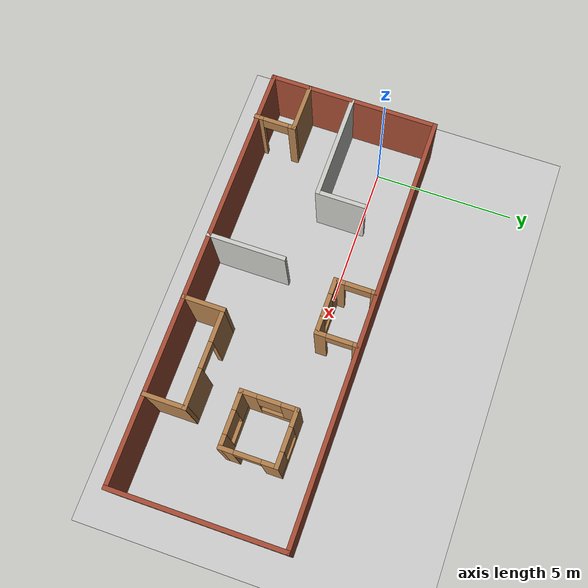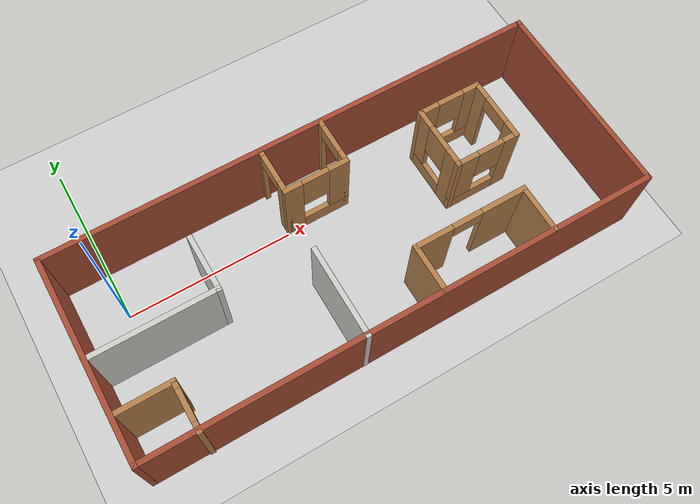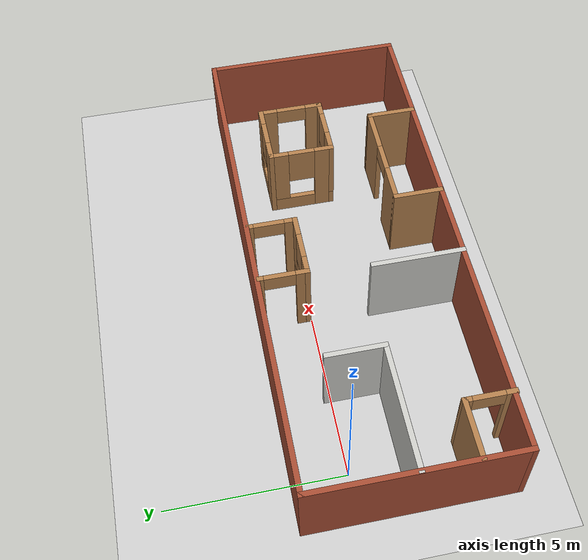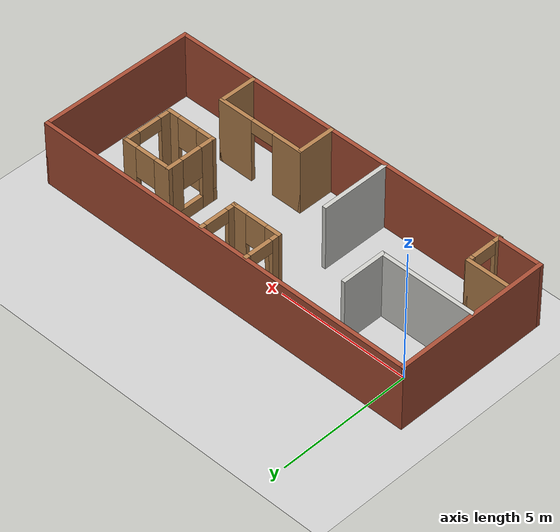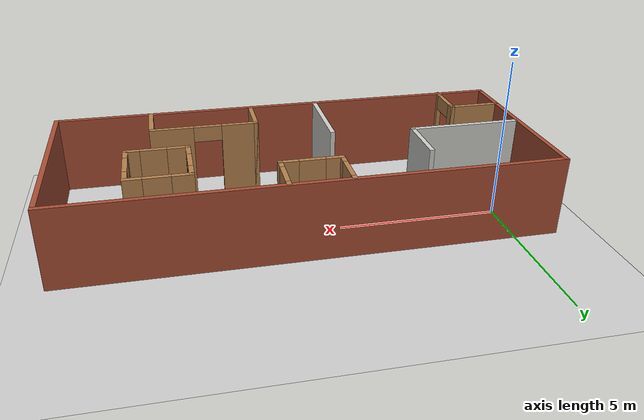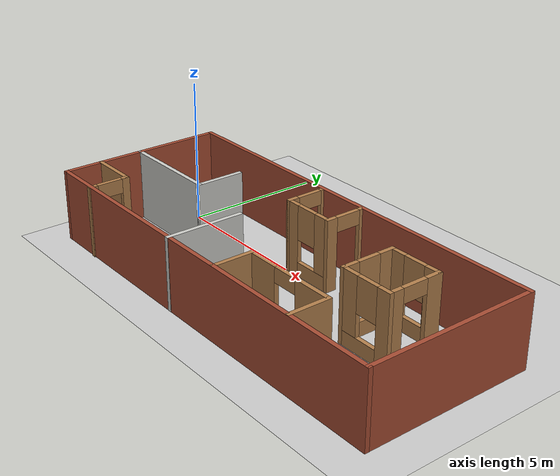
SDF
<sdf version="1.7">
 <world name="default">
  <light name="sun" type="directional">
   <pose>0 0 10 0 -0 0</pose>
   <diffuse>0.8 0.8 0.8 1</diffuse>
   <specular>0.2 0.2 0.2 1</specular>
   <attenuation>
    <range>1000</range>
    <constant>0.9</constant>
    <linear>0.01</linear>
    <quadratic>0.001</quadratic>
   </attenuation>
   <direction>-0.5 0.1 -0.9</direction>
   <spot><inner_angle>0</inner_angle><outer_angle>0</outer_angle><falloff>0</falloff></spot>
  </light>
  <model name="ground_plane">
   <static>1</static>
   <link name="link">
    <collision name="collision">
     <geometry><plane><normal>0 0 1</normal><size>100 100</size></plane></geometry>
     <surface>
      <contact><collide_bitmask>65535</collide_bitmask></contact>
      <friction><ode><mu>100</mu><mu2>50</mu2></ode></friction>
     </surface>
    </collision>
    <visual name="visual">
     <cast_shadows>0</cast_shadows>
     <geometry><plane><normal>0 0 1</normal><size>100 100</size></plane></geometry>
     <material>
      <script><uri>file://media/materials/scripts/gazebo.material</uri><name>Gazebo/Grey</name></script>
     </material>
    </visual>
   </link>
  </model>
  <gravity>0 0 -9.8</gravity>
  <magnetic_field>6e-06 2.3e-05 -4.2e-05</magnetic_field>
  <atmosphere type="adiabatic"/>
  <physics type="ode">
   <max_step_size>0.001</max_step_size>
   <real_time_factor>1</real_time_factor>
   <real_time_update_rate>1000</real_time_update_rate>
  </physics>
  <scene><ambient>0.4 0.4 0.4 1</ambient><background>0.7 0.7 0.7 1</background><shadows>1</shadows></scene>
  <audio><device>default</device></audio>
  <spherical_coordinates>
   <surface_model>EARTH_WGS84</surface_model>
   <latitude_deg>0</latitude_deg>
   <longitude_deg>0</longitude_deg>
   <elevation>0</elevation>
   <heading_deg>0</heading_deg>
  </spherical_coordinates>
  <model name="Untitled">
   <pose>6.12861 -1.12142 0 0 -0 0</pose>
   <link name="Wall_10">
    <collision name="Wall_10_Collision">
     <geometry><box><size>6 0.15 2.5</size></box></geometry>
     <pose>0 0 1.25 0 -0 0</pose>
    </collision>
    <visual name="Wall_10_Visual">
     <pose>0 0 1.25 0 -0 0</pose>
     <geometry><box><size>6 0.15 2.5</size></box></geometry>
     <material>
      <script><uri>file://media/materials/scripts/gazebo.material</uri><name>Gazebo/Bricks</name></script>
      <ambient>1 1 1 1</ambient>
     </material>
     <meta><layer>0</layer></meta>
    </visual>
    <pose>-7.425 -0.296062 0 0 -0 1.5708</pose>
   </link>
   <link name="Wall_12">
    <collision name="Wall_12_Collision">
     <geometry><box><size>3.75 0.15 2.5</size></box></geometry>
     <pose>0 0 1.25 0 -0 0</pose>
    </collision>
    <visual name="Wall_12_Visual">
     <pose>0 0 1.25 0 -0 0</pose>
     <geometry><box><size>3.75 0.15 2.5</size></box></geometry>
     <material>
      <script><uri>file://media/materials/scripts/gazebo.material</uri><name>Gazebo/CeilingTiled</name></script>
      <ambient>1 1 1 1</ambient>
     </material>
     <meta><layer>0</layer></meta>
    </visual>
    <pose>-5.61177 -0.346688 0 0 -0 0</pose>
   </link>
   <link name="Wall_13">
    <collision name="Wall_13_Collision">
     <geometry><box><size>1.75 0.15 2.5</size></box></geometry>
     <pose>0 0 1.25 0 -0 0</pose>
    </collision>
    <visual name="Wall_13_Visual">
     <pose>0 0 1.25 0 -0 0</pose>
     <geometry><box><size>1.75 0.15 2.5</size></box></geometry>
     <material>
      <script><uri>file://media/materials/scripts/gazebo.material</uri><name>Gazebo/CeilingTiled</name></script>
      <ambient>1 1 1 1</ambient>
     </material>
     <meta><layer>0</layer></meta>
    </visual>
    <pose>-3.81177 0.453312 0 0 -0 1.5708</pose>
   </link>
   <link name="Wall_16">
    <pose>4.25192 1.46514 0 0 -0 0</pose>
    <visual name="Wall_16_Visual_0">
     <pose>-0.679787 0 1.25 0 -0 0</pose>
     <geometry><box><size>0.640425 0.15 2.5</size></box></geometry>
     <material>
      <script><uri>file://media/materials/scripts/gazebo.material</uri><name>Gazebo/Wood</name></script>
      <ambient>1 1 1 1</ambient>
     </material>
     <meta><layer>0</layer></meta>
    </visual>
    <collision name="Wall_16_Collision_0">
     <geometry><box><size>0.640425 0.15 2.5</size></box></geometry>
     <pose>-0.679787 0 1.25 0 -0 0</pose>
    </collision>
    <visual name="Wall_16_Visual_1">
     <pose>0.320213 0 0.25 0 -0 0</pose>
     <geometry><box><size>1.35957 0.15 0.5</size></box></geometry>
     <material>
      <script><uri>file://media/materials/scripts/gazebo.material</uri><name>Gazebo/Wood</name></script>
      <ambient>1 1 1 1</ambient>
     </material>
     <meta><layer>0</layer></meta>
    </visual>
    <collision name="Wall_16_Collision_1">
     <geometry><box><size>1.35957 0.15 0.5</size></box></geometry>
     <pose>0.320213 0 0.25 0 -0 0</pose>
    </collision>
    <visual name="Wall_16_Visual_2">
     <pose>0.720213 0 1.5 0 -0 0</pose>
     <geometry><box><size>0.559575 0.15 2</size></box></geometry>
     <material>
      <script><uri>file://media/materials/scripts/gazebo.material</uri><name>Gazebo/Wood</name></script>
      <ambient>1 1 1 1</ambient>
     </material>
     <meta><layer>0</layer></meta>
    </visual>
    <collision name="Wall_16_Collision_2">
     <geometry><box><size>0.559575 0.15 2</size></box></geometry>
     <pose>0.720213 0 1.5 0 -0 0</pose>
    </collision>
    <visual name="Wall_16_Visual_3">
     <pose>0.040425 0 1.9 0 -0 0</pose>
     <geometry><box><size>0.8 0.15 1.2</size></box></geometry>
     <material>
      <script><uri>file://media/materials/scripts/gazebo.material</uri><name>Gazebo/Wood</name></script>
      <ambient>1 1 1 1</ambient>
     </material>
     <meta><layer>0</layer></meta>
    </visual>
    <collision name="Wall_16_Collision_3">
     <geometry><box><size>0.8 0.15 1.2</size></box></geometry>
     <pose>0.040425 0 1.9 0 -0 0</pose>
    </collision>
   </link>
   <link name="Wall_17">
    <pose>5.17692 0.540138 0 0 -0 -1.5708</pose>
    <visual name="Wall_17_Visual_0">
     <pose>-0.7114 0 1.25 0 -0 0</pose>
     <geometry><box><size>0.5772 0.15 2.5</size></box></geometry>
     <material>
      <script><uri>file://media/materials/scripts/gazebo.material</uri><name>Gazebo/Wood</name></script>
      <ambient>1 1 1 1</ambient>
     </material>
     <meta><layer>0</layer></meta>
    </visual>
    <collision name="Wall_17_Collision_0">
     <geometry><box><size>0.5772 0.15 2.5</size></box></geometry>
     <pose>-0.7114 0 1.25 0 -0 0</pose>
    </collision>
    <visual name="Wall_17_Visual_1">
     <pose>0.7386 0 1.25 0 -0 0</pose>
     <geometry><box><size>0.5228 0.15 2.5</size></box></geometry>
     <material>
      <script><uri>file://media/materials/scripts/gazebo.material</uri><name>Gazebo/Wood</name></script>
      <ambient>1 1 1 1</ambient>
     </material>
     <meta><layer>0</layer></meta>
    </visual>
    <collision name="Wall_17_Collision_1">
     <geometry><box><size>0.5228 0.15 2.5</size></box></geometry>
     <pose>0.7386 0 1.25 0 -0 0</pose>
    </collision>
    <visual name="Wall_17_Visual_2">
     <pose>0.0272 0 2.25 0 -0 0</pose>
     <geometry><box><size>0.9 0.15 0.5</size></box></geometry>
     <material>
      <script><uri>file://media/materials/scripts/gazebo.material</uri><name>Gazebo/Wood</name></script>
      <ambient>1 1 1 1</ambient>
     </material>
     <meta><layer>0</layer></meta>
    </visual>
    <collision name="Wall_17_Collision_2">
     <geometry><box><size>0.9 0.15 0.5</size></box></geometry>
     <pose>0.0272 0 2.25 0 -0 0</pose>
    </collision>
   </link>
   <link name="Wall_18">
    <pose>4.25192 -0.384862 0 0 -0 3.14159</pose>
    <visual name="Wall_18_Visual_0">
     <pose>-0.753275 0 1.25 0 -0 0</pose>
     <geometry><box><size>0.49345 0.15 2.5</size></box></geometry>
     <material>
      <script><uri>file://media/materials/scripts/gazebo.material</uri><name>Gazebo/Wood</name></script>
      <ambient>1 1 1 1</ambient>
     </material>
     <meta><layer>0</layer></meta>
    </visual>
    <collision name="Wall_18_Collision_0">
     <geometry><box><size>0.49345 0.15 2.5</size></box></geometry>
     <pose>-0.753275 0 1.25 0 -0 0</pose>
    </collision>
    <visual name="Wall_18_Visual_1">
     <pose>0.246725 0 0.25 0 -0 0</pose>
     <geometry><box><size>1.50655 0.15 0.5</size></box></geometry>
     <material>
      <script><uri>file://media/materials/scripts/gazebo.material</uri><name>Gazebo/Wood</name></script>
      <ambient>1 1 1 1</ambient>
     </material>
     <meta><layer>0</layer></meta>
    </visual>
    <collision name="Wall_18_Collision_1">
     <geometry><box><size>1.50655 0.15 0.5</size></box></geometry>
     <pose>0.246725 0 0.25 0 -0 0</pose>
    </collision>
    <visual name="Wall_18_Visual_2">
     <pose>0.646725 0 1.5 0 -0 0</pose>
     <geometry><box><size>0.70655 0.15 2</size></box></geometry>
     <material>
      <script><uri>file://media/materials/scripts/gazebo.material</uri><name>Gazebo/Wood</name></script>
      <ambient>1 1 1 1</ambient>
     </material>
     <meta><layer>0</layer></meta>
    </visual>
    <collision name="Wall_18_Collision_2">
     <geometry><box><size>0.70655 0.15 2</size></box></geometry>
     <pose>0.646725 0 1.5 0 -0 0</pose>
    </collision>
    <visual name="Wall_18_Visual_3">
     <pose>-0.10655 0 1.9 0 -0 0</pose>
     <geometry><box><size>0.8 0.15 1.2</size></box></geometry>
     <material>
      <script><uri>file://media/materials/scripts/gazebo.material</uri><name>Gazebo/Wood</name></script>
      <ambient>1 1 1 1</ambient>
     </material>
     <meta><layer>0</layer></meta>
    </visual>
    <collision name="Wall_18_Collision_3">
     <geometry><box><size>0.8 0.15 1.2</size></box></geometry>
     <pose>-0.10655 0 1.9 0 -0 0</pose>
    </collision>
   </link>
   <link name="Wall_19">
    <pose>3.32693 0.540138 0 0 -0 1.5708</pose>
    <visual name="Wall_19_Visual_0">
     <pose>-0.700375 0 1.25 0 -0 0</pose>
     <geometry><box><size>0.59925 0.15 2.5</size></box></geometry>
     <material>
      <script><uri>file://media/materials/scripts/gazebo.material</uri><name>Gazebo/Wood</name></script>
      <ambient>1 1 1 1</ambient>
     </material>
     <meta><layer>0</layer></meta>
    </visual>
    <collision name="Wall_19_Collision_0">
     <geometry><box><size>0.59925 0.15 2.5</size></box></geometry>
     <pose>-0.700375 0 1.25 0 -0 0</pose>
    </collision>
    <visual name="Wall_19_Visual_1">
     <pose>0.299625 0 0.25 0 -0 0</pose>
     <geometry><box><size>1.40075 0.15 0.5</size></box></geometry>
     <material>
      <script><uri>file://media/materials/scripts/gazebo.material</uri><name>Gazebo/Wood</name></script>
      <ambient>1 1 1 1</ambient>
     </material>
     <meta><layer>0</layer></meta>
    </visual>
    <collision name="Wall_19_Collision_1">
     <geometry><box><size>1.40075 0.15 0.5</size></box></geometry>
     <pose>0.299625 0 0.25 0 -0 0</pose>
    </collision>
    <visual name="Wall_19_Visual_2">
     <pose>0.699625 0 1.5 0 -0 0</pose>
     <geometry><box><size>0.60075 0.15 2</size></box></geometry>
     <material>
      <script><uri>file://media/materials/scripts/gazebo.material</uri><name>Gazebo/Wood</name></script>
      <ambient>1 1 1 1</ambient>
     </material>
     <meta><layer>0</layer></meta>
    </visual>
    <collision name="Wall_19_Collision_2">
     <geometry><box><size>0.60075 0.15 2</size></box></geometry>
     <pose>0.699625 0 1.5 0 -0 0</pose>
    </collision>
    <visual name="Wall_19_Visual_3">
     <pose>-0.00075 0 1.9 0 -0 0</pose>
     <geometry><box><size>0.8 0.15 1.2</size></box></geometry>
     <material>
      <script><uri>file://media/materials/scripts/gazebo.material</uri><name>Gazebo/Wood</name></script>
      <ambient>1 1 1 1</ambient>
     </material>
     <meta><layer>0</layer></meta>
    </visual>
    <collision name="Wall_19_Collision_3">
     <geometry><box><size>0.8 0.15 1.2</size></box></geometry>
     <pose>-0.00075 0 1.9 0 -0 0</pose>
    </collision>
   </link>
   <link name="Wall_21">
    <collision name="Wall_21_Collision">
     <geometry><box><size>2.75 0.15 2.5</size></box></geometry>
     <pose>0 0 1.25 0 -0 0</pose>
    </collision>
    <visual name="Wall_21_Visual">
     <pose>0 0 1.25 0 -0 0</pose>
     <geometry><box><size>2.75 0.15 2.5</size></box></geometry>
     <material>
      <script><uri>file://media/materials/scripts/gazebo.material</uri><name>Gazebo/CeilingTiled</name></script>
      <ambient>1 1 1 1</ambient>
     </material>
     <meta><layer>0</layer></meta>
    </visual>
    <pose>-1.22247 -1.92974 0 0 -0 1.5708</pose>
   </link>
   <link name="Wall_23">
    <collision name="Wall_23_Collision">
     <geometry><box><size>1.75 0.15 2.5</size></box></geometry>
     <pose>0 0 1.25 0 -0 0</pose>
    </collision>
    <visual name="Wall_23_Visual">
     <pose>0 0 1.25 0 -0 0</pose>
     <geometry><box><size>1.75 0.15 2.5</size></box></geometry>
     <material>
      <script><uri>file://media/materials/scripts/gazebo.material</uri><name>Gazebo/Wood</name></script>
      <ambient>1 1 1 1</ambient>
     </material>
     <meta><layer>0</layer></meta>
    </visual>
    <pose>-6.59855 -1.90724 0 0 -0 0</pose>
   </link>
   <link name="Wall_24">
    <pose>-5.79855 -2.58224 0 0 -0 -1.5708</pose>
    <visual name="Wall_24_Visual_0">
     <pose>-0.613488 0 1.25 0 -0 0</pose>
     <geometry><box><size>0.273025 0.15 2.5</size></box></geometry>
     <material>
      <script><uri>file://media/materials/scripts/gazebo.material</uri><name>Gazebo/Wood</name></script>
      <ambient>1 1 1 1</ambient>
     </material>
     <meta><layer>0</layer></meta>
    </visual>
    <collision name="Wall_24_Collision_0">
     <geometry><box><size>0.273025 0.15 2.5</size></box></geometry>
     <pose>-0.613488 0 1.25 0 -0 0</pose>
    </collision>
    <visual name="Wall_24_Visual_1">
     <pose>0.586512 0 1.25 0 -0 0</pose>
     <geometry><box><size>0.326975 0.15 2.5</size></box></geometry>
     <material>
      <script><uri>file://media/materials/scripts/gazebo.material</uri><name>Gazebo/Wood</name></script>
      <ambient>1 1 1 1</ambient>
     </material>
     <meta><layer>0</layer></meta>
    </visual>
    <collision name="Wall_24_Collision_1">
     <geometry><box><size>0.326975 0.15 2.5</size></box></geometry>
     <pose>0.586512 0 1.25 0 -0 0</pose>
    </collision>
    <visual name="Wall_24_Visual_2">
     <pose>-0.026975 0 2.25 0 -0 0</pose>
     <geometry><box><size>0.9 0.15 0.5</size></box></geometry>
     <material>
      <script><uri>file://media/materials/scripts/gazebo.material</uri><name>Gazebo/Wood</name></script>
      <ambient>1 1 1 1</ambient>
     </material>
     <meta><layer>0</layer></meta>
    </visual>
    <collision name="Wall_24_Collision_2">
     <geometry><box><size>0.9 0.15 0.5</size></box></geometry>
     <pose>-0.026975 0 2.25 0 -0 0</pose>
    </collision>
   </link>
   <link name="Wall_26">
    <collision name="Wall_26_Collision">
     <geometry><box><size>1.5 0.15 2.5</size></box></geometry>
     <pose>0 0 1.25 0 -0 0</pose>
    </collision>
    <visual name="Wall_26_Visual">
     <pose>0 0 1.25 0 -0 0</pose>
     <geometry><box><size>1.5 0.15 2.5</size></box></geometry>
     <material>
      <script><uri>file://media/materials/scripts/gazebo.material</uri><name>Gazebo/Wood</name></script>
      <ambient>1 1 1 1</ambient>
     </material>
     <meta><layer>0</layer></meta>
    </visual>
    <pose>1.039 -2.52829 0 0 -0 1.5708</pose>
   </link>
   <link name="Wall_27">
    <pose>2.714 -1.85329 0 0 -0 0</pose>
    <visual name="Wall_27_Visual_0">
     <pose>-1.15061 0 1.25 0 -0 0</pose>
     <geometry><box><size>1.19877 0.15 2.5</size></box></geometry>
     <material>
      <script><uri>file://media/materials/scripts/gazebo.material</uri><name>Gazebo/Wood</name></script>
      <ambient>1 1 1 1</ambient>
     </material>
     <meta><layer>0</layer></meta>
    </visual>
    <collision name="Wall_27_Collision_0">
     <geometry><box><size>1.19877 0.15 2.5</size></box></geometry>
     <pose>-1.15061 0 1.25 0 -0 0</pose>
    </collision>
    <visual name="Wall_27_Visual_1">
     <pose>1.04939 0 1.25 0 -0 0</pose>
     <geometry><box><size>1.40122 0.15 2.5</size></box></geometry>
     <material>
      <script><uri>file://media/materials/scripts/gazebo.material</uri><name>Gazebo/Wood</name></script>
      <ambient>1 1 1 1</ambient>
     </material>
     <meta><layer>0</layer></meta>
    </visual>
    <collision name="Wall_27_Collision_1">
     <geometry><box><size>1.40122 0.15 2.5</size></box></geometry>
     <pose>1.04939 0 1.25 0 -0 0</pose>
    </collision>
    <visual name="Wall_27_Visual_2">
     <pose>-0.101225 0 2.25 0 -0 0</pose>
     <geometry><box><size>0.9 0.15 0.5</size></box></geometry>
     <material>
      <script><uri>file://media/materials/scripts/gazebo.material</uri><name>Gazebo/Wood</name></script>
      <ambient>1 1 1 1</ambient>
     </material>
     <meta><layer>0</layer></meta>
    </visual>
    <collision name="Wall_27_Collision_2">
     <geometry><box><size>0.9 0.15 0.5</size></box></geometry>
     <pose>-0.101225 0 2.25 0 -0 0</pose>
    </collision>
   </link>
   <link name="Wall_28">
    <collision name="Wall_28_Collision">
     <geometry><box><size>1.5 0.15 2.5</size></box></geometry>
     <pose>0 0 1.25 0 -0 0</pose>
    </collision>
    <visual name="Wall_28_Visual">
     <pose>0 0 1.25 0 -0 0</pose>
     <geometry><box><size>1.5 0.15 2.5</size></box></geometry>
     <material>
      <script><uri>file://media/materials/scripts/gazebo.material</uri><name>Gazebo/Wood</name></script>
      <ambient>1 1 1 1</ambient>
     </material>
     <meta><layer>0</layer></meta>
    </visual>
    <pose>4.389 -2.52829 0 0 -0 -1.5708</pose>
   </link>
   <link name="Wall_30">
    <pose>-1.06377 1.88781 0 0 -0 -1.5708</pose>
    <visual name="Wall_30_Visual_0">
     <pose>-0.653163 0 1.25 0 -0 0</pose>
     <geometry><box><size>0.193675 0.15 2.5</size></box></geometry>
     <material>
      <script><uri>file://media/materials/scripts/gazebo.material</uri><name>Gazebo/Wood</name></script>
      <ambient>1 1 1 1</ambient>
     </material>
     <meta><layer>0</layer></meta>
    </visual>
    <collision name="Wall_30_Collision_0">
     <geometry><box><size>0.193675 0.15 2.5</size></box></geometry>
     <pose>-0.653163 0 1.25 0 -0 0</pose>
    </collision>
    <visual name="Wall_30_Visual_1">
     <pose>0.546837 0 1.25 0 -0 0</pose>
     <geometry><box><size>0.406325 0.15 2.5</size></box></geometry>
     <material>
      <script><uri>file://media/materials/scripts/gazebo.material</uri><name>Gazebo/Wood</name></script>
      <ambient>1 1 1 1</ambient>
     </material>
     <meta><layer>0</layer></meta>
    </visual>
    <collision name="Wall_30_Collision_1">
     <geometry><box><size>0.406325 0.15 2.5</size></box></geometry>
     <pose>0.546837 0 1.25 0 -0 0</pose>
    </collision>
    <visual name="Wall_30_Visual_2">
     <pose>-0.106325 0 2.25 0 -0 0</pose>
     <geometry><box><size>0.9 0.15 0.5</size></box></geometry>
     <material>
      <script><uri>file://media/materials/scripts/gazebo.material</uri><name>Gazebo/Wood</name></script>
      <ambient>1 1 1 1</ambient>
     </material>
     <meta><layer>0</layer></meta>
    </visual>
    <collision name="Wall_30_Collision_2">
     <geometry><box><size>0.9 0.15 0.5</size></box></geometry>
     <pose>-0.106325 0 2.25 0 -0 0</pose>
    </collision>
   </link>
   <link name="Wall_31">
    <pose>-0.138775 1.21281 0 0 -0 0</pose>
    <visual name="Wall_31_Visual_0">
     <pose>-0.71285 0 1.25 0 -0 0</pose>
     <geometry><box><size>0.5743 0.15 2.5</size></box></geometry>
     <material>
      <script><uri>file://media/materials/scripts/gazebo.material</uri><name>Gazebo/Wood</name></script>
      <ambient>1 1 1 1</ambient>
     </material>
     <meta><layer>0</layer></meta>
    </visual>
    <collision name="Wall_31_Collision_0">
     <geometry><box><size>0.5743 0.15 2.5</size></box></geometry>
     <pose>-0.71285 0 1.25 0 -0 0</pose>
    </collision>
    <visual name="Wall_31_Visual_1">
     <pose>0.28715 0 0.25 0 -0 0</pose>
     <geometry><box><size>1.4257 0.15 0.5</size></box></geometry>
     <material>
      <script><uri>file://media/materials/scripts/gazebo.material</uri><name>Gazebo/Wood</name></script>
      <ambient>1 1 1 1</ambient>
     </material>
     <meta><layer>0</layer></meta>
    </visual>
    <collision name="Wall_31_Collision_1">
     <geometry><box><size>1.4257 0.15 0.5</size></box></geometry>
     <pose>0.28715 0 0.25 0 -0 0</pose>
    </collision>
    <visual name="Wall_31_Visual_2">
     <pose>0.68715 0 1.5 0 -0 0</pose>
     <geometry><box><size>0.6257 0.15 2</size></box></geometry>
     <material>
      <script><uri>file://media/materials/scripts/gazebo.material</uri><name>Gazebo/Wood</name></script>
      <ambient>1 1 1 1</ambient>
     </material>
     <meta><layer>0</layer></meta>
    </visual>
    <collision name="Wall_31_Collision_2">
     <geometry><box><size>0.6257 0.15 2</size></box></geometry>
     <pose>0.68715 0 1.5 0 -0 0</pose>
    </collision>
    <visual name="Wall_31_Visual_3">
     <pose>-0.0257 0 1.9 0 -0 0</pose>
     <geometry><box><size>0.8 0.15 1.2</size></box></geometry>
     <material>
      <script><uri>file://media/materials/scripts/gazebo.material</uri><name>Gazebo/Wood</name></script>
      <ambient>1 1 1 1</ambient>
     </material>
     <meta><layer>0</layer></meta>
    </visual>
    <collision name="Wall_31_Collision_3">
     <geometry><box><size>0.8 0.15 1.2</size></box></geometry>
     <pose>-0.0257 0 1.9 0 -0 0</pose>
    </collision>
   </link>
   <link name="Wall_32">
    <pose>0.786225 1.88781 0 0 -0 1.5708</pose>
    <visual name="Wall_32_Visual_0">
     <pose>-0.55345 0 1.25 0 -0 0</pose>
     <geometry><box><size>0.3931 0.15 2.5</size></box></geometry>
     <material>
      <script><uri>file://media/materials/scripts/gazebo.material</uri><name>Gazebo/Wood</name></script>
      <ambient>1 1 1 1</ambient>
     </material>
     <meta><layer>0</layer></meta>
    </visual>
    <collision name="Wall_32_Collision_0">
     <geometry><box><size>0.3931 0.15 2.5</size></box></geometry>
     <pose>-0.55345 0 1.25 0 -0 0</pose>
    </collision>
    <visual name="Wall_32_Visual_1">
     <pose>0.64655 0 1.25 0 -0 0</pose>
     <geometry><box><size>0.2069 0.15 2.5</size></box></geometry>
     <material>
      <script><uri>file://media/materials/scripts/gazebo.material</uri><name>Gazebo/Wood</name></script>
      <ambient>1 1 1 1</ambient>
     </material>
     <meta><layer>0</layer></meta>
    </visual>
    <collision name="Wall_32_Collision_1">
     <geometry><box><size>0.2069 0.15 2.5</size></box></geometry>
     <pose>0.64655 0 1.25 0 -0 0</pose>
    </collision>
    <visual name="Wall_32_Visual_2">
     <pose>0.0931 0 2.25 0 -0 0</pose>
     <geometry><box><size>0.9 0.15 0.5</size></box></geometry>
     <material>
      <script><uri>file://media/materials/scripts/gazebo.material</uri><name>Gazebo/Wood</name></script>
      <ambient>1 1 1 1</ambient>
     </material>
     <meta><layer>0</layer></meta>
    </visual>
    <collision name="Wall_32_Collision_2">
     <geometry><box><size>0.9 0.15 0.5</size></box></geometry>
     <pose>0.0931 0 2.25 0 -0 0</pose>
    </collision>
   </link>
   <link name="Wall_7">
    <collision name="Wall_7_Collision">
     <geometry><box><size>15 0.15 2.5</size></box></geometry>
     <pose>0 0 1.25 0 -0 0</pose>
    </collision>
    <visual name="Wall_7_Visual">
     <pose>0 0 1.25 0 -0 0</pose>
     <geometry><box><size>15 0.15 2.5</size></box></geometry>
     <material>
      <script><uri>file://media/materials/scripts/gazebo.material</uri><name>Gazebo/Bricks</name></script>
      <ambient>1 1 1 1</ambient>
     </material>
     <meta><layer>0</layer></meta>
    </visual>
    <pose>0 2.62894 0 0 -0 0</pose>
   </link>
   <link name="Wall_8">
    <collision name="Wall_8_Collision">
     <geometry><box><size>6 0.15 2.5</size></box></geometry>
     <pose>0 0 1.25 0 -0 0</pose>
    </collision>
    <visual name="Wall_8_Visual">
     <pose>0 0 1.25 0 -0 0</pose>
     <geometry><box><size>6 0.15 2.5</size></box></geometry>
     <material>
      <script><uri>file://media/materials/scripts/gazebo.material</uri><name>Gazebo/Bricks</name></script>
      <ambient>1 1 1 1</ambient>
     </material>
     <meta><layer>0</layer></meta>
    </visual>
    <pose>7.425 -0.296062 0 0 -0 -1.5708</pose>
   </link>
   <link name="Wall_9">
    <collision name="Wall_9_Collision">
     <geometry><box><size>15 0.15 2.5</size></box></geometry>
     <pose>0 0 1.25 0 -0 0</pose>
    </collision>
    <visual name="Wall_9_Visual">
     <pose>0 0 1.25 0 -0 0</pose>
     <geometry><box><size>15 0.15 2.5</size></box></geometry>
     <material>
      <script><uri>file://media/materials/scripts/gazebo.material</uri><name>Gazebo/Bricks</name></script>
      <ambient>1 1 1 1</ambient>
     </material>
     <meta><layer>0</layer></meta>
    </visual>
    <pose>0 -3.22106 0 0 -0 3.14159</pose>
   </link>
   <static>1</static>
  </model>
 </world>
</sdf>
